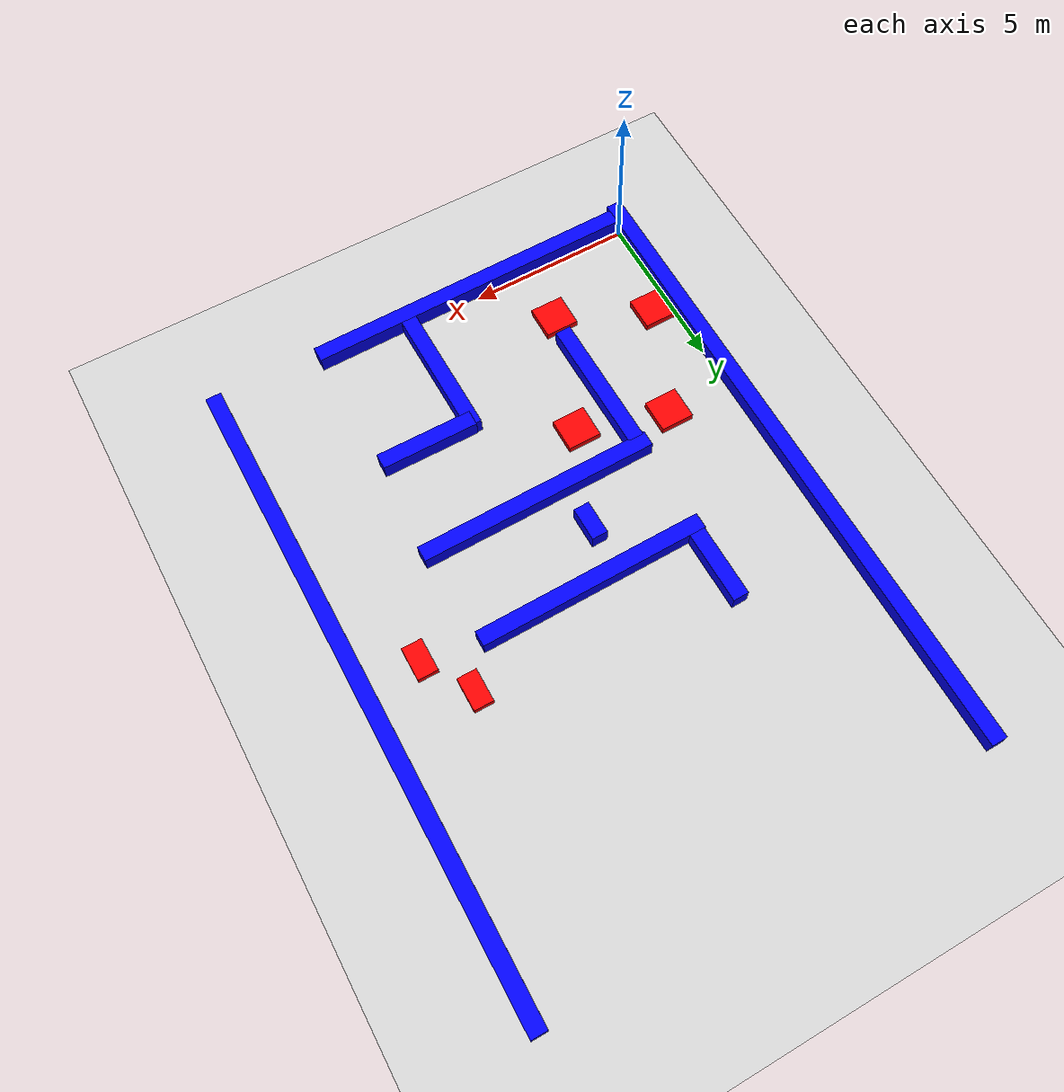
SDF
<sdf version="1.7">
 <world name="default">
  <model name="ground_plane">
   <static>1</static>
   <link name="link">
    <collision name="collision">
     <geometry><plane><normal>0 0 1</normal><size>100 100</size></plane></geometry>
     <surface>
      <contact><collide_bitmask>65535</collide_bitmask></contact>
      <friction><ode><mu>100</mu><mu2>50</mu2></ode></friction>
     </surface>
    </collision>
    <visual name="visual">
     <cast_shadows>0</cast_shadows>
     <geometry><plane><normal>0 0 1</normal><size>100 100</size></plane></geometry>
     <material>
      <script><uri>file://media/materials/scripts/gazebo.material</uri><name>Gazebo/Grey</name></script>
     </material>
    </visual>
   </link>
  </model>
  <model name="blue__wall">
   <link name="link_0">
    <inertial>
     <mass>3.38479</mass>
     <inertia><ixx>51.2617</ixx><ixy>0</ixy><ixz>0</ixz><iyy>0.142515</iyy><iyz>0</iyz><izz>51.2469</izz></inertia>
    </inertial>
    <visual name="visual">
     <geometry><box><size>0.47589 19.6362 0.528001</size></box></geometry>
     <material>
      <lighting>1</lighting>
      <script><uri>file://media/materials/scripts/gazebo.material</uri><name>Gazebo/Grey</name></script>
      <shader type="pixel"><normal_map>__default__</normal_map></shader>
      <ambient>0 0 1 0</ambient>
      <diffuse>0.7 0.7 0.7 1</diffuse>
      <specular>0.01 0.01 0.01 1</specular>
      <emissive>0 0 0 1</emissive>
     </material>
    </visual>
    <collision name="collision">
     <geometry><box><size>0.47589 19.6362 0.528001</size></box></geometry>
     <surface>
      <friction>
       <ode><mu>1</mu><mu2>1</mu2><fdir1>0 0 0</fdir1><slip1>0</slip1><slip2>0</slip2></ode>
       <torsional>
        <coefficient>1</coefficient>
        <patch_radius>0</patch_radius>
        <surface_radius>0</surface_radius>
        <use_patch_radius>1</use_patch_radius>
        <ode><slip>0</slip></ode>
       </torsional>
      </friction>
      <bounce><restitution_coefficient>0</restitution_coefficient><threshold>1e+06</threshold></bounce>
      <contact>
       <collide_without_contact>0</collide_without_contact>
       <collide_without_contact_bitmask>1</collide_without_contact_bitmask>
       <collide_bitmask>1</collide_bitmask>
       <ode>
        <soft_cfm>0</soft_cfm>
        <soft_erp>0.2</soft_erp>
        <kp>1e+13</kp>
        <kd>1</kd>
        <max_vel>0.01</max_vel>
        <min_depth>0</min_depth>
       </ode>
       <bullet>
        <split_impulse>1</split_impulse>
        <split_impulse_penetration_threshold>-0.01</split_impulse_penetration_threshold>
        <soft_cfm>0</soft_cfm>
        <soft_erp>0.2</soft_erp>
        <kp>1e+13</kp>
        <kd>1</kd>
       </bullet>
      </contact>
     </surface>
    </collision>
   </link>
   <static>0</static>
   <pose>-0.108984 9.22349 0.5 0 -0 0</pose>
  </model>
  <model name="blue__wall_clone_clone_clone">
   <link name="link_0">
    <inertial>
     <mass>3.38479</mass>
     <inertia><ixx>51.2617</ixx><ixy>0</ixy><ixz>0</ixz><iyy>0.142515</iyy><iyz>0</iyz><izz>51.2469</izz></inertia>
    </inertial>
    <visual name="visual">
     <geometry><box><size>0.47589 10.1039 0.528001</size></box></geometry>
     <material>
      <lighting>1</lighting>
      <script><uri>file://media/materials/scripts/gazebo.material</uri><name>Gazebo/Grey</name></script>
      <shader type="pixel"><normal_map>__default__</normal_map></shader>
      <ambient>0 0 1 0</ambient>
      <diffuse>0.7 0.7 0.7 1</diffuse>
      <specular>0.01 0.01 0.01 1</specular>
      <emissive>0 0 0 1</emissive>
     </material>
    </visual>
    <collision name="collision">
     <geometry><box><size>0.47589 10.1039 0.528001</size></box></geometry>
     <surface>
      <friction>
       <ode><mu>1</mu><mu2>1</mu2><fdir1>0 0 0</fdir1><slip1>0</slip1><slip2>0</slip2></ode>
       <torsional>
        <coefficient>1</coefficient>
        <patch_radius>0</patch_radius>
        <surface_radius>0</surface_radius>
        <use_patch_radius>1</use_patch_radius>
        <ode><slip>0</slip></ode>
       </torsional>
      </friction>
      <bounce><restitution_coefficient>0</restitution_coefficient><threshold>1e+06</threshold></bounce>
      <contact>
       <collide_without_contact>0</collide_without_contact>
       <collide_without_contact_bitmask>1</collide_without_contact_bitmask>
       <collide_bitmask>1</collide_bitmask>
       <ode>
        <soft_cfm>0</soft_cfm>
        <soft_erp>0.2</soft_erp>
        <kp>1e+13</kp>
        <kd>1</kd>
        <max_vel>0.01</max_vel>
        <min_depth>0</min_depth>
       </ode>
       <bullet>
        <split_impulse>1</split_impulse>
        <split_impulse_penetration_threshold>-0.01</split_impulse_penetration_threshold>
        <soft_cfm>0</soft_cfm>
        <soft_erp>0.2</soft_erp>
        <kp>1e+13</kp>
        <kd>1</kd>
       </bullet>
      </contact>
     </surface>
    </collision>
   </link>
   <static>0</static>
   <pose>5.16866 -0.144308 0.5 0 -0 1.57956</pose>
  </model>
  <model name="blue__wall_clone_clone_clone_clone_clone">
   <link name="link_0">
    <inertial>
     <mass>3.38479</mass>
     <inertia><ixx>51.2617</ixx><ixy>0</ixy><ixz>0</ixz><iyy>0.142515</iyy><iyz>0</iyz><izz>51.2469</izz></inertia>
    </inertial>
    <visual name="visual">
     <geometry><box><size>0.47589 6.9172 0.528001</size></box></geometry>
     <material>
      <lighting>1</lighting>
      <script><uri>file://media/materials/scripts/gazebo.material</uri><name>Gazebo/Grey</name></script>
      <shader type="pixel"><normal_map>__default__</normal_map></shader>
      <ambient>0 0 1 0</ambient>
      <diffuse>0.7 0.7 0.7 1</diffuse>
      <specular>0.01 0.01 0.01 1</specular>
      <emissive>0 0 0 1</emissive>
     </material>
    </visual>
    <collision name="collision">
     <geometry><box><size>0.47589 6.9172 0.528001</size></box></geometry>
     <surface>
      <friction>
       <ode><mu>1</mu><mu2>1</mu2><fdir1>0 0 0</fdir1><slip1>0</slip1><slip2>0</slip2></ode>
       <torsional>
        <coefficient>1</coefficient>
        <patch_radius>0</patch_radius>
        <surface_radius>0</surface_radius>
        <use_patch_radius>1</use_patch_radius>
        <ode><slip>0</slip></ode>
       </torsional>
      </friction>
      <bounce><restitution_coefficient>0</restitution_coefficient><threshold>1e+06</threshold></bounce>
      <contact>
       <collide_without_contact>0</collide_without_contact>
       <collide_without_contact_bitmask>1</collide_without_contact_bitmask>
       <collide_bitmask>1</collide_bitmask>
       <ode>
        <soft_cfm>0</soft_cfm>
        <soft_erp>0.2</soft_erp>
        <kp>1e+13</kp>
        <kd>1</kd>
        <max_vel>0.01</max_vel>
        <min_depth>0</min_depth>
       </ode>
       <bullet>
        <split_impulse>1</split_impulse>
        <split_impulse_penetration_threshold>-0.01</split_impulse_penetration_threshold>
        <soft_cfm>0</soft_cfm>
        <soft_erp>0.2</soft_erp>
        <kp>1e+13</kp>
        <kd>1</kd>
       </bullet>
      </contact>
     </surface>
    </collision>
   </link>
   <static>0</static>
   <pose>6.7016 10.0282 0.5 0 -0 1.57956</pose>
  </model>
  <model name="blue__wall_clone_clone_clone_clone_clone_clone">
   <link name="link_0">
    <inertial>
     <mass>3.38479</mass>
     <inertia><ixx>51.2617</ixx><ixy>0</ixy><ixz>0</ixz><iyy>0.142515</iyy><iyz>0</iyz><izz>51.2469</izz></inertia>
    </inertial>
    <visual name="visual">
     <geometry><box><size>0.47589 7.22384 0.528001</size></box></geometry>
     <material>
      <lighting>1</lighting>
      <script><uri>file://media/materials/scripts/gazebo.material</uri><name>Gazebo/Grey</name></script>
      <shader type="pixel"><normal_map>__default__</normal_map></shader>
      <ambient>0 0 1 0</ambient>
      <diffuse>0.7 0.7 0.7 1</diffuse>
      <specular>0.01 0.01 0.01 1</specular>
      <emissive>0 0 0 1</emissive>
     </material>
    </visual>
    <collision name="collision">
     <geometry><box><size>0.47589 7.22384 0.528001</size></box></geometry>
     <surface>
      <friction>
       <ode><mu>1</mu><mu2>1</mu2><fdir1>0 0 0</fdir1><slip1>0</slip1><slip2>0</slip2></ode>
       <torsional>
        <coefficient>1</coefficient>
        <patch_radius>0</patch_radius>
        <surface_radius>0</surface_radius>
        <use_patch_radius>1</use_patch_radius>
        <ode><slip>0</slip></ode>
       </torsional>
      </friction>
      <bounce><restitution_coefficient>0</restitution_coefficient><threshold>1e+06</threshold></bounce>
      <contact>
       <collide_without_contact>0</collide_without_contact>
       <collide_without_contact_bitmask>1</collide_without_contact_bitmask>
       <collide_bitmask>1</collide_bitmask>
       <ode>
        <soft_cfm>0</soft_cfm>
        <soft_erp>0.2</soft_erp>
        <kp>1e+13</kp>
        <kd>1</kd>
        <max_vel>0.01</max_vel>
        <min_depth>0</min_depth>
       </ode>
       <bullet>
        <split_impulse>1</split_impulse>
        <split_impulse_penetration_threshold>-0.01</split_impulse_penetration_threshold>
        <soft_cfm>0</soft_cfm>
        <soft_erp>0.2</soft_erp>
        <kp>1e+13</kp>
        <kd>1</kd>
       </bullet>
      </contact>
     </surface>
    </collision>
   </link>
   <static>0</static>
   <pose>6.79848 7.09038 0.5 0 -0 1.57956</pose>
  </model>
  <model name="blue__wall_clone_clone_clone_clone_clone_clone_clone">
   <link name="link_0">
    <inertial>
     <mass>3.38479</mass>
     <inertia><ixx>51.2617</ixx><ixy>0</ixy><ixz>0</ixz><iyy>0.142515</iyy><iyz>0</iyz><izz>51.2469</izz></inertia>
    </inertial>
    <visual name="visual">
     <geometry><box><size>0.47589 4.18247 0.528001</size></box></geometry>
     <material>
      <lighting>1</lighting>
      <script><uri>file://media/materials/scripts/gazebo.material</uri><name>Gazebo/Grey</name></script>
      <shader type="pixel"><normal_map>__default__</normal_map></shader>
      <ambient>0 0 1 0</ambient>
      <diffuse>0.7 0.7 0.7 1</diffuse>
      <specular>0.01 0.01 0.01 1</specular>
      <emissive>0 0 0 1</emissive>
     </material>
    </visual>
    <collision name="collision">
     <geometry><box><size>0.47589 4.18247 0.528001</size></box></geometry>
     <surface>
      <friction>
       <ode><mu>1</mu><mu2>1</mu2><fdir1>0 0 0</fdir1><slip1>0</slip1><slip2>0</slip2></ode>
       <torsional>
        <coefficient>1</coefficient>
        <patch_radius>0</patch_radius>
        <surface_radius>0</surface_radius>
        <use_patch_radius>1</use_patch_radius>
        <ode><slip>0</slip></ode>
       </torsional>
      </friction>
      <bounce><restitution_coefficient>0</restitution_coefficient><threshold>1e+06</threshold></bounce>
      <contact>
       <collide_without_contact>0</collide_without_contact>
       <collide_without_contact_bitmask>1</collide_without_contact_bitmask>
       <collide_bitmask>1</collide_bitmask>
       <ode>
        <soft_cfm>0</soft_cfm>
        <soft_erp>0.2</soft_erp>
        <kp>1e+13</kp>
        <kd>1</kd>
        <max_vel>0.01</max_vel>
        <min_depth>0</min_depth>
       </ode>
       <bullet>
        <split_impulse>1</split_impulse>
        <split_impulse_penetration_threshold>-0.01</split_impulse_penetration_threshold>
        <soft_cfm>0</soft_cfm>
        <soft_erp>0.2</soft_erp>
        <kp>1e+13</kp>
        <kd>1</kd>
       </bullet>
      </contact>
     </surface>
    </collision>
   </link>
   <static>0</static>
   <pose>3.51014 4.78809 0.5 0 -0 -3.12986</pose>
  </model>
  <model name="blue__wall_clone">
   <link name="link_0">
    <inertial>
     <mass>3.38479</mass>
     <inertia><ixx>51.2617</ixx><ixy>0</ixy><ixz>0</ixz><iyy>0.142515</iyy><iyz>0</iyz><izz>51.2469</izz></inertia>
    </inertial>
    <visual name="visual">
     <geometry><box><size>0.47589 19.6362 0.528001</size></box></geometry>
     <material>
      <lighting>1</lighting>
      <script><uri>file://media/materials/scripts/gazebo.material</uri><name>Gazebo/Grey</name></script>
      <shader type="pixel"><normal_map>__default__</normal_map></shader>
      <ambient>0 0 1 0</ambient>
      <diffuse>0.7 0.7 0.7 1</diffuse>
      <specular>0.01 0.01 0.01 1</specular>
      <emissive>0 0 0 1</emissive>
     </material>
    </visual>
    <collision name="collision">
     <geometry><box><size>0.47589 19.6362 0.528001</size></box></geometry>
     <surface>
      <friction>
       <ode><mu>1</mu><mu2>1</mu2><fdir1>0 0 0</fdir1><slip1>0</slip1><slip2>0</slip2></ode>
       <torsional>
        <coefficient>1</coefficient>
        <patch_radius>0</patch_radius>
        <surface_radius>0</surface_radius>
        <use_patch_radius>1</use_patch_radius>
        <ode><slip>0</slip></ode>
       </torsional>
      </friction>
      <bounce><restitution_coefficient>0</restitution_coefficient><threshold>1e+06</threshold></bounce>
      <contact>
       <collide_without_contact>0</collide_without_contact>
       <collide_without_contact_bitmask>1</collide_without_contact_bitmask>
       <collide_bitmask>1</collide_bitmask>
       <ode>
        <soft_cfm>0</soft_cfm>
        <soft_erp>0.2</soft_erp>
        <kp>1e+13</kp>
        <kd>1</kd>
        <max_vel>0.01</max_vel>
        <min_depth>0</min_depth>
       </ode>
       <bullet>
        <split_impulse>1</split_impulse>
        <split_impulse_penetration_threshold>-0.01</split_impulse_penetration_threshold>
        <soft_cfm>0</soft_cfm>
        <soft_erp>0.2</soft_erp>
        <kp>1e+13</kp>
        <kd>1</kd>
       </bullet>
      </contact>
     </surface>
    </collision>
   </link>
   <static>0</static>
   <pose>13.4295 9.53036 0.5 0 -0 0</pose>
  </model>
  <model name="blue__wall_clone_clone_clone_clone_clone_clone_clone_clone">
   <link name="link_0">
    <inertial>
     <mass>3.38479</mass>
     <inertia><ixx>51.2617</ixx><ixy>0</ixy><ixz>0</ixz><iyy>0.142515</iyy><iyz>0</iyz><izz>51.2469</izz></inertia>
    </inertial>
    <visual name="visual">
     <geometry><box><size>0.47589 4.18247 0.528001</size></box></geometry>
     <material>
      <lighting>1</lighting>
      <script><uri>file://media/materials/scripts/gazebo.material</uri><name>Gazebo/Grey</name></script>
      <shader type="pixel"><normal_map>__default__</normal_map></shader>
      <ambient>0 0 1 0</ambient>
      <diffuse>0.7 0.7 0.7 1</diffuse>
      <specular>0.01 0.01 0.01 1</specular>
      <emissive>0 0 0 1</emissive>
     </material>
    </visual>
    <collision name="collision">
     <geometry><box><size>0.47589 4.18247 0.528001</size></box></geometry>
     <surface>
      <friction>
       <ode><mu>1</mu><mu2>1</mu2><fdir1>0 0 0</fdir1><slip1>0</slip1><slip2>0</slip2></ode>
       <torsional>
        <coefficient>1</coefficient>
        <patch_radius>0</patch_radius>
        <surface_radius>0</surface_radius>
        <use_patch_radius>1</use_patch_radius>
        <ode><slip>0</slip></ode>
       </torsional>
      </friction>
      <bounce><restitution_coefficient>0</restitution_coefficient><threshold>1e+06</threshold></bounce>
      <contact>
       <collide_without_contact>0</collide_without_contact>
       <collide_without_contact_bitmask>1</collide_without_contact_bitmask>
       <collide_bitmask>1</collide_bitmask>
       <ode>
        <soft_cfm>0</soft_cfm>
        <soft_erp>0.2</soft_erp>
        <kp>1e+13</kp>
        <kd>1</kd>
        <max_vel>0.01</max_vel>
        <min_depth>0</min_depth>
       </ode>
       <bullet>
        <split_impulse>1</split_impulse>
        <split_impulse_penetration_threshold>-0.01</split_impulse_penetration_threshold>
        <soft_cfm>0</soft_cfm>
        <soft_erp>0.2</soft_erp>
        <kp>1e+13</kp>
        <kd>1</kd>
       </bullet>
      </contact>
     </surface>
    </collision>
   </link>
   <static>0</static>
   <pose>7.31792 2.13979 0.5 0 0 -3.12986</pose>
  </model>
  <model name="blue__wall_clone_clone_clone_clone_clone_clone_clone_clone_clone">
   <link name="link_0">
    <inertial>
     <mass>3.38479</mass>
     <inertia><ixx>51.2617</ixx><ixy>0</ixy><ixz>0</ixz><iyy>0.142515</iyy><iyz>0</iyz><izz>51.2469</izz></inertia>
    </inertial>
    <visual name="visual">
     <geometry><box><size>0.47589 2.55946 0.528001</size></box></geometry>
     <material>
      <lighting>1</lighting>
      <script><uri>file://media/materials/scripts/gazebo.material</uri><name>Gazebo/Grey</name></script>
      <shader type="pixel"><normal_map>__default__</normal_map></shader>
      <ambient>0 0 1 0</ambient>
      <diffuse>0.7 0.7 0.7 1</diffuse>
      <specular>0.01 0.01 0.01 1</specular>
      <emissive>0 0 0 1</emissive>
     </material>
    </visual>
    <collision name="collision">
     <geometry><box><size>0.47589 2.55946 0.528001</size></box></geometry>
     <surface>
      <friction>
       <ode><mu>1</mu><mu2>1</mu2><fdir1>0 0 0</fdir1><slip1>0</slip1><slip2>0</slip2></ode>
       <torsional>
        <coefficient>1</coefficient>
        <patch_radius>0</patch_radius>
        <surface_radius>0</surface_radius>
        <use_patch_radius>1</use_patch_radius>
        <ode><slip>0</slip></ode>
       </torsional>
      </friction>
      <bounce><restitution_coefficient>0</restitution_coefficient><threshold>1e+06</threshold></bounce>
      <contact>
       <collide_without_contact>0</collide_without_contact>
       <collide_without_contact_bitmask>1</collide_without_contact_bitmask>
       <collide_bitmask>1</collide_bitmask>
       <ode>
        <soft_cfm>0</soft_cfm>
        <soft_erp>0.2</soft_erp>
        <kp>1e+13</kp>
        <kd>1</kd>
        <max_vel>0.01</max_vel>
        <min_depth>0</min_depth>
       </ode>
       <bullet>
        <split_impulse>1</split_impulse>
        <split_impulse_penetration_threshold>-0.01</split_impulse_penetration_threshold>
        <soft_cfm>0</soft_cfm>
        <soft_erp>0.2</soft_erp>
        <kp>1e+13</kp>
        <kd>1</kd>
       </bullet>
      </contact>
     </surface>
    </collision>
   </link>
   <static>0</static>
   <pose>3.50582 11.1721 0.5 0 0 -3.12986</pose>
  </model>
  <model name="blue__wall_clone_clone_clone_clone_clone_clone_clone_clone_clone_clone">
   <link name="link_0">
    <inertial>
     <mass>3.38479</mass>
     <inertia><ixx>51.2617</ixx><ixy>0</ixy><ixz>0</ixz><iyy>0.142515</iyy><iyz>0</iyz><izz>51.2469</izz></inertia>
    </inertial>
    <visual name="visual">
     <geometry><box><size>0.47589 2.9259 0.528001</size></box></geometry>
     <material>
      <lighting>1</lighting>
      <script><uri>file://media/materials/scripts/gazebo.material</uri><name>Gazebo/Grey</name></script>
      <shader type="pixel"><normal_map>__default__</normal_map></shader>
      <ambient>0 0 1 0</ambient>
      <diffuse>0.7 0.7 0.7 1</diffuse>
      <specular>0.01 0.01 0.01 1</specular>
      <emissive>0 0 0 1</emissive>
     </material>
    </visual>
    <collision name="collision">
     <geometry><box><size>0.47589 2.9259 0.528001</size></box></geometry>
     <surface>
      <friction>
       <ode><mu>1</mu><mu2>1</mu2><fdir1>0 0 0</fdir1><slip1>0</slip1><slip2>0</slip2></ode>
       <torsional>
        <coefficient>1</coefficient>
        <patch_radius>0</patch_radius>
        <surface_radius>0</surface_radius>
        <use_patch_radius>1</use_patch_radius>
        <ode><slip>0</slip></ode>
       </torsional>
      </friction>
      <bounce><restitution_coefficient>0</restitution_coefficient><threshold>1e+06</threshold></bounce>
      <contact>
       <collide_without_contact>0</collide_without_contact>
       <collide_without_contact_bitmask>1</collide_without_contact_bitmask>
       <collide_bitmask>1</collide_bitmask>
       <ode>
        <soft_cfm>0</soft_cfm>
        <soft_erp>0.2</soft_erp>
        <kp>1e+13</kp>
        <kd>1</kd>
        <max_vel>0.01</max_vel>
        <min_depth>0</min_depth>
       </ode>
       <bullet>
        <split_impulse>1</split_impulse>
        <split_impulse_penetration_threshold>-0.01</split_impulse_penetration_threshold>
        <soft_cfm>0</soft_cfm>
        <soft_erp>0.2</soft_erp>
        <kp>1e+13</kp>
        <kd>1</kd>
       </bullet>
      </contact>
     </surface>
    </collision>
   </link>
   <static>0</static>
   <pose>8.68638 4.01732 0.5 0 -0 1.56564</pose>
  </model>
  <model name="blue__wall_clone_clone_clone_clone_clone_clone_clone_clone_clone_clone_0">
   <link name="link_0">
    <inertial>
     <mass>3.38479</mass>
     <inertia><ixx>51.2617</ixx><ixy>0</ixy><ixz>0</ixz><iyy>0.142515</iyy><iyz>0</iyz><izz>51.2469</izz></inertia>
    </inertial>
    <visual name="visual">
     <geometry><box><size>0.47589 1.03249 0.528001</size></box></geometry>
     <material>
      <lighting>1</lighting>
      <script><uri>file://media/materials/scripts/gazebo.material</uri><name>Gazebo/Grey</name></script>
      <shader type="pixel"><normal_map>__default__</normal_map></shader>
      <ambient>0 0 1 0</ambient>
      <diffuse>0.7 0.7 0.7 1</diffuse>
      <specular>0.01 0.01 0.01 1</specular>
      <emissive>0 0 0 1</emissive>
     </material>
    </visual>
    <collision name="collision">
     <geometry><box><size>0.47589 1.03249 0.528001</size></box></geometry>
     <surface>
      <friction>
       <ode><mu>1</mu><mu2>1</mu2><fdir1>0 0 0</fdir1><slip1>0</slip1><slip2>0</slip2></ode>
       <torsional>
        <coefficient>1</coefficient>
        <patch_radius>0</patch_radius>
        <surface_radius>0</surface_radius>
        <use_patch_radius>1</use_patch_radius>
        <ode><slip>0</slip></ode>
       </torsional>
      </friction>
      <bounce><restitution_coefficient>0</restitution_coefficient><threshold>1e+06</threshold></bounce>
      <contact>
       <collide_without_contact>0</collide_without_contact>
       <collide_without_contact_bitmask>1</collide_without_contact_bitmask>
       <collide_bitmask>1</collide_bitmask>
       <ode>
        <soft_cfm>0</soft_cfm>
        <soft_erp>0.2</soft_erp>
        <kp>1e+13</kp>
        <kd>1</kd>
        <max_vel>0.01</max_vel>
        <min_depth>0</min_depth>
       </ode>
       <bullet>
        <split_impulse>1</split_impulse>
        <split_impulse_penetration_threshold>-0.01</split_impulse_penetration_threshold>
        <soft_cfm>0</soft_cfm>
        <soft_erp>0.2</soft_erp>
        <kp>1e+13</kp>
        <kd>1</kd>
       </bullet>
      </contact>
     </surface>
    </collision>
   </link>
   <static>0</static>
   <pose>5.89774 8.51162 0.5 0 0 -3.12986</pose>
  </model>
  <model name="red_mines_clone_clone">
   <link name="link_1">
    <inertial>
     <mass>1</mass>
     <inertia>
      <ixx>0.166667</ixx>
      <ixy>0</ixy>
      <ixz>0</ixz>
      <iyy>0.166667</iyy>
      <iyz>0</iyz>
      <izz>0.166667</izz>
     </inertia>
    </inertial>
    <visual name="visual">
     <geometry><box><size>1 1 0.214149</size></box></geometry>
     <material>
      <lighting>1</lighting>
      <script><uri>file://media/materials/scripts/gazebo.material</uri><name>Gazebo/Grey</name></script>
      <shader type="pixel"><normal_map>__default__</normal_map></shader>
      <ambient>1 0 0 0</ambient>
      <diffuse>0.7 0.7 0.7 1</diffuse>
      <specular>0.01 0.01 0.01 1</specular>
      <emissive>0 0 0 1</emissive>
     </material>
    </visual>
    <collision name="collision">
     <geometry><box><size>1 1 0.214149</size></box></geometry>
     <surface>
      <friction>
       <ode><mu>1</mu><mu2>1</mu2><fdir1>0 0 0</fdir1><slip1>0</slip1><slip2>0</slip2></ode>
       <torsional>
        <coefficient>1</coefficient>
        <patch_radius>0</patch_radius>
        <surface_radius>0</surface_radius>
        <use_patch_radius>1</use_patch_radius>
        <ode><slip>0</slip></ode>
       </torsional>
      </friction>
      <bounce><restitution_coefficient>0</restitution_coefficient><threshold>1e+06</threshold></bounce>
      <contact>
       <collide_without_contact>0</collide_without_contact>
       <collide_without_contact_bitmask>1</collide_without_contact_bitmask>
       <collide_bitmask>1</collide_bitmask>
       <ode>
        <soft_cfm>0</soft_cfm>
        <soft_erp>0.2</soft_erp>
        <kp>1e+13</kp>
        <kd>1</kd>
        <max_vel>0.01</max_vel>
        <min_depth>0</min_depth>
       </ode>
       <bullet>
        <split_impulse>1</split_impulse>
        <split_impulse_penetration_threshold>-0.01</split_impulse_penetration_threshold>
        <soft_cfm>0</soft_cfm>
        <soft_erp>0.2</soft_erp>
        <kp>1e+13</kp>
        <kd>1</kd>
       </bullet>
      </contact>
     </surface>
    </collision>
   </link>
   <static>0</static>
   <pose>4.76211 5.70404 0.5 0 -0 0</pose>
  </model>
  <model name="red_mines_clone_clone_0">
   <link name="link_1">
    <inertial>
     <mass>1</mass>
     <inertia>
      <ixx>0.166667</ixx>
      <ixy>0</ixy>
      <ixz>0</ixz>
      <iyy>0.166667</iyy>
      <iyz>0</iyz>
      <izz>0.166667</izz>
     </inertia>
    </inertial>
    <visual name="visual">
     <geometry><box><size>0.580738 1 0.214149</size></box></geometry>
     <material>
      <lighting>1</lighting>
      <script><uri>file://media/materials/scripts/gazebo.material</uri><name>Gazebo/Grey</name></script>
      <shader type="pixel"><normal_map>__default__</normal_map></shader>
      <ambient>1 0 0 0</ambient>
      <diffuse>0.7 0.7 0.7 1</diffuse>
      <specular>0.01 0.01 0.01 1</specular>
      <emissive>0 0 0 1</emissive>
     </material>
    </visual>
    <collision name="collision">
     <geometry><box><size>0.580738 1 0.214149</size></box></geometry>
     <surface>
      <friction>
       <ode><mu>1</mu><mu2>1</mu2><fdir1>0 0 0</fdir1><slip1>0</slip1><slip2>0</slip2></ode>
       <torsional>
        <coefficient>1</coefficient>
        <patch_radius>0</patch_radius>
        <surface_radius>0</surface_radius>
        <use_patch_radius>1</use_patch_radius>
        <ode><slip>0</slip></ode>
       </torsional>
      </friction>
      <bounce><restitution_coefficient>0</restitution_coefficient><threshold>1e+06</threshold></bounce>
      <contact>
       <collide_without_contact>0</collide_without_contact>
       <collide_without_contact_bitmask>1</collide_without_contact_bitmask>
       <collide_bitmask>1</collide_bitmask>
       <ode>
        <soft_cfm>0</soft_cfm>
        <soft_erp>0.2</soft_erp>
        <kp>1e+13</kp>
        <kd>1</kd>
        <max_vel>0.01</max_vel>
        <min_depth>0</min_depth>
       </ode>
       <bullet>
        <split_impulse>1</split_impulse>
        <split_impulse_penetration_threshold>-0.01</split_impulse_penetration_threshold>
        <soft_cfm>0</soft_cfm>
        <soft_erp>0.2</soft_erp>
        <kp>1e+13</kp>
        <kd>1</kd>
       </bullet>
      </contact>
     </surface>
    </collision>
   </link>
   <static>0</static>
   <pose>10.8801 11.1899 0.5 0 -0 0</pose>
  </model>
  <model name="red_mines_clone_clone_0_clone_0">
   <link name="link_1">
    <inertial>
     <mass>1</mass>
     <inertia>
      <ixx>0.166667</ixx>
      <ixy>0</ixy>
      <ixz>0</ixz>
      <iyy>0.166667</iyy>
      <iyz>0</iyz>
      <izz>0.166667</izz>
     </inertia>
    </inertial>
    <visual name="visual">
     <geometry><box><size>0.602905 1 0.214149</size></box></geometry>
     <material>
      <lighting>1</lighting>
      <script><uri>file://media/materials/scripts/gazebo.material</uri><name>Gazebo/Grey</name></script>
      <shader type="pixel"><normal_map>__default__</normal_map></shader>
      <ambient>1 0 0 0</ambient>
      <diffuse>0.7 0.7 0.7 1</diffuse>
      <specular>0.01 0.01 0.01 1</specular>
      <emissive>0 0 0 1</emissive>
     </material>
    </visual>
    <collision name="collision">
     <geometry><box><size>0.602905 1 0.214149</size></box></geometry>
     <surface>
      <friction>
       <ode><mu>1</mu><mu2>1</mu2><fdir1>0 0 0</fdir1><slip1>0</slip1><slip2>0</slip2></ode>
       <torsional>
        <coefficient>1</coefficient>
        <patch_radius>0</patch_radius>
        <surface_radius>0</surface_radius>
        <use_patch_radius>1</use_patch_radius>
        <ode><slip>0</slip></ode>
       </torsional>
      </friction>
      <bounce><restitution_coefficient>0</restitution_coefficient><threshold>1e+06</threshold></bounce>
      <contact>
       <collide_without_contact>0</collide_without_contact>
       <collide_without_contact_bitmask>1</collide_without_contact_bitmask>
       <collide_bitmask>1</collide_bitmask>
       <ode>
        <soft_cfm>0</soft_cfm>
        <soft_erp>0.2</soft_erp>
        <kp>1e+13</kp>
        <kd>1</kd>
        <max_vel>0.01</max_vel>
        <min_depth>0</min_depth>
       </ode>
       <bullet>
        <split_impulse>1</split_impulse>
        <split_impulse_penetration_threshold>-0.01</split_impulse_penetration_threshold>
        <soft_cfm>0</soft_cfm>
        <soft_erp>0.2</soft_erp>
        <kp>1e+13</kp>
        <kd>1</kd>
       </bullet>
      </contact>
     </surface>
    </collision>
   </link>
   <static>0</static>
   <pose>11.7691 9.73126 0.5 0 -0 0</pose>
  </model>
  <model name="red_mines_clone_clone_clone_clone">
   <link name="link_1">
    <inertial>
     <mass>1</mass>
     <inertia>
      <ixx>0.166667</ixx>
      <ixy>0</ixy>
      <ixz>0</ixz>
      <iyy>0.166667</iyy>
      <iyz>0</iyz>
      <izz>0.166667</izz>
     </inertia>
    </inertial>
    <visual name="visual">
     <geometry><box><size>1 1 0.214149</size></box></geometry>
     <material>
      <lighting>1</lighting>
      <script><uri>file://media/materials/scripts/gazebo.material</uri><name>Gazebo/Grey</name></script>
      <shader type="pixel"><normal_map>__default__</normal_map></shader>
      <ambient>1 0 0 0</ambient>
      <diffuse>0.7 0.7 0.7 1</diffuse>
      <specular>0.01 0.01 0.01 1</specular>
      <emissive>0 0 0 1</emissive>
     </material>
    </visual>
    <collision name="collision">
     <geometry><box><size>1 1 0.214149</size></box></geometry>
     <surface>
      <friction>
       <ode><mu>1</mu><mu2>1</mu2><fdir1>0 0 0</fdir1><slip1>0</slip1><slip2>0</slip2></ode>
       <torsional>
        <coefficient>1</coefficient>
        <patch_radius>0</patch_radius>
        <surface_radius>0</surface_radius>
        <use_patch_radius>1</use_patch_radius>
        <ode><slip>0</slip></ode>
       </torsional>
      </friction>
      <bounce><restitution_coefficient>0</restitution_coefficient><threshold>1e+06</threshold></bounce>
      <contact>
       <collide_without_contact>0</collide_without_contact>
       <collide_without_contact_bitmask>1</collide_without_contact_bitmask>
       <collide_bitmask>1</collide_bitmask>
       <ode>
        <soft_cfm>0</soft_cfm>
        <soft_erp>0.2</soft_erp>
        <kp>1e+13</kp>
        <kd>1</kd>
        <max_vel>0.01</max_vel>
        <min_depth>0</min_depth>
       </ode>
       <bullet>
        <split_impulse>1</split_impulse>
        <split_impulse_penetration_threshold>-0.01</split_impulse_penetration_threshold>
        <soft_cfm>0</soft_cfm>
        <soft_erp>0.2</soft_erp>
        <kp>1e+13</kp>
        <kd>1</kd>
       </bullet>
      </contact>
     </surface>
    </collision>
   </link>
   <static>0</static>
   <pose>3.46309 2.04332 0.5 0 -0 0</pose>
  </model>
  <model name="red_mines_clone_clone_clone_clone_0">
   <link name="link_1">
    <inertial>
     <mass>1</mass>
     <inertia>
      <ixx>0.166667</ixx>
      <ixy>0</ixy>
      <ixz>0</ixz>
      <iyy>0.166667</iyy>
      <iyz>0</iyz>
      <izz>0.166667</izz>
     </inertia>
    </inertial>
    <visual name="visual">
     <geometry><box><size>1 1 0.214149</size></box></geometry>
     <material>
      <lighting>1</lighting>
      <script><uri>file://media/materials/scripts/gazebo.material</uri><name>Gazebo/Grey</name></script>
      <shader type="pixel"><normal_map>__default__</normal_map></shader>
      <ambient>1 0 0 0</ambient>
      <diffuse>0.7 0.7 0.7 1</diffuse>
      <specular>0.01 0.01 0.01 1</specular>
      <emissive>0 0 0 1</emissive>
     </material>
    </visual>
    <collision name="collision">
     <geometry><box><size>1 1 0.214149</size></box></geometry>
     <surface>
      <friction>
       <ode><mu>1</mu><mu2>1</mu2><fdir1>0 0 0</fdir1><slip1>0</slip1><slip2>0</slip2></ode>
       <torsional>
        <coefficient>1</coefficient>
        <patch_radius>0</patch_radius>
        <surface_radius>0</surface_radius>
        <use_patch_radius>1</use_patch_radius>
        <ode><slip>0</slip></ode>
       </torsional>
      </friction>
      <bounce><restitution_coefficient>0</restitution_coefficient><threshold>1e+06</threshold></bounce>
      <contact>
       <collide_without_contact>0</collide_without_contact>
       <collide_without_contact_bitmask>1</collide_without_contact_bitmask>
       <collide_bitmask>1</collide_bitmask>
       <ode>
        <soft_cfm>0</soft_cfm>
        <soft_erp>0.2</soft_erp>
        <kp>1e+13</kp>
        <kd>1</kd>
        <max_vel>0.01</max_vel>
        <min_depth>0</min_depth>
       </ode>
       <bullet>
        <split_impulse>1</split_impulse>
        <split_impulse_penetration_threshold>-0.01</split_impulse_penetration_threshold>
        <soft_cfm>0</soft_cfm>
        <soft_erp>0.2</soft_erp>
        <kp>1e+13</kp>
        <kd>1</kd>
       </bullet>
      </contact>
     </surface>
    </collision>
   </link>
   <static>0</static>
   <pose>0.732991 3.2216 0.5 0 -0 0</pose>
  </model>
  <model name="red_mines_clone_clone_clone_clone_1">
   <link name="link_1">
    <inertial>
     <mass>1</mass>
     <inertia>
      <ixx>0.166667</ixx>
      <ixy>0</ixy>
      <ixz>0</ixz>
      <iyy>0.166667</iyy>
      <iyz>0</iyz>
      <izz>0.166667</izz>
     </inertia>
    </inertial>
    <visual name="visual">
     <geometry><box><size>1 1 0.214149</size></box></geometry>
     <material>
      <lighting>1</lighting>
      <script><uri>file://media/materials/scripts/gazebo.material</uri><name>Gazebo/Grey</name></script>
      <shader type="pixel"><normal_map>__default__</normal_map></shader>
      <ambient>1 0 0 0</ambient>
      <diffuse>0.7 0.7 0.7 1</diffuse>
      <specular>0.01 0.01 0.01 1</specular>
      <emissive>0 0 0 1</emissive>
     </material>
    </visual>
    <collision name="collision">
     <geometry><box><size>1 1 0.214149</size></box></geometry>
     <surface>
      <friction>
       <ode><mu>1</mu><mu2>1</mu2><fdir1>0 0 0</fdir1><slip1>0</slip1><slip2>0</slip2></ode>
       <torsional>
        <coefficient>1</coefficient>
        <patch_radius>0</patch_radius>
        <surface_radius>0</surface_radius>
        <use_patch_radius>1</use_patch_radius>
        <ode><slip>0</slip></ode>
       </torsional>
      </friction>
      <bounce><restitution_coefficient>0</restitution_coefficient><threshold>1e+06</threshold></bounce>
      <contact>
       <collide_without_contact>0</collide_without_contact>
       <collide_without_contact_bitmask>1</collide_without_contact_bitmask>
       <collide_bitmask>1</collide_bitmask>
       <ode>
        <soft_cfm>0</soft_cfm>
        <soft_erp>0.2</soft_erp>
        <kp>1e+13</kp>
        <kd>1</kd>
        <max_vel>0.01</max_vel>
        <min_depth>0</min_depth>
       </ode>
       <bullet>
        <split_impulse>1</split_impulse>
        <split_impulse_penetration_threshold>-0.01</split_impulse_penetration_threshold>
        <soft_cfm>0</soft_cfm>
        <soft_erp>0.2</soft_erp>
        <kp>1e+13</kp>
        <kd>1</kd>
       </bullet>
      </contact>
     </surface>
    </collision>
   </link>
   <static>0</static>
   <pose>2.13669 6.48173 0.5 0 -0 0</pose>
  </model>
 </world>
</sdf>
